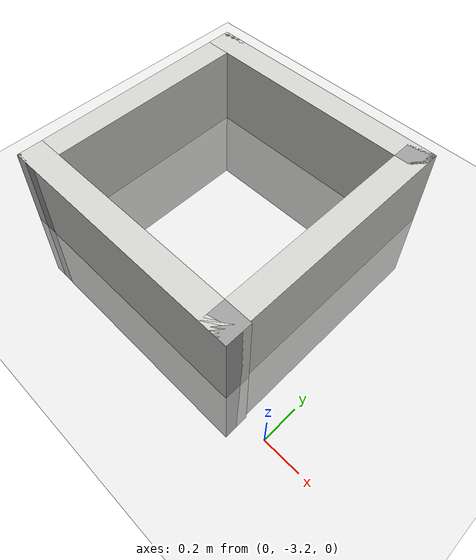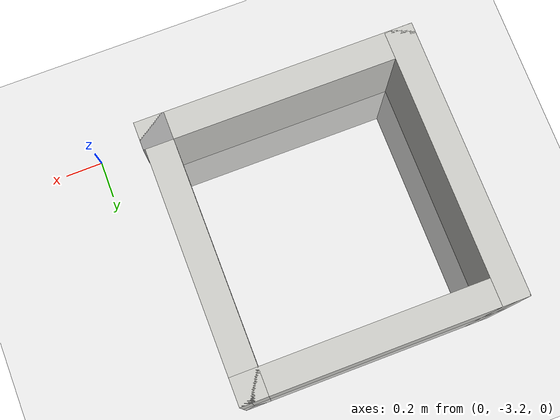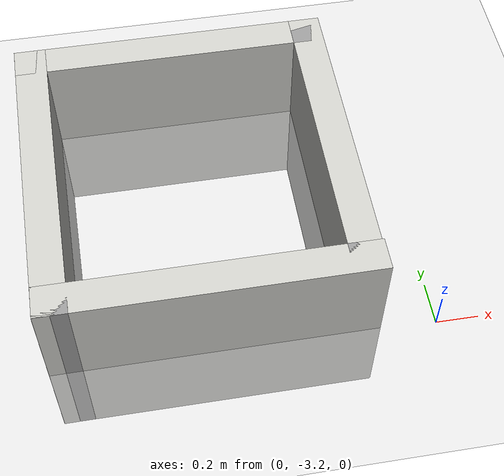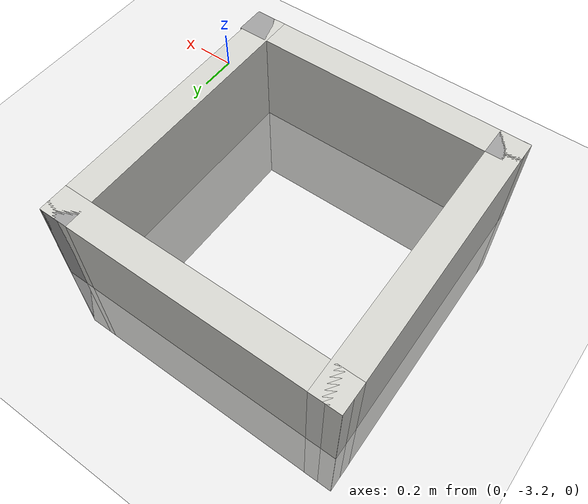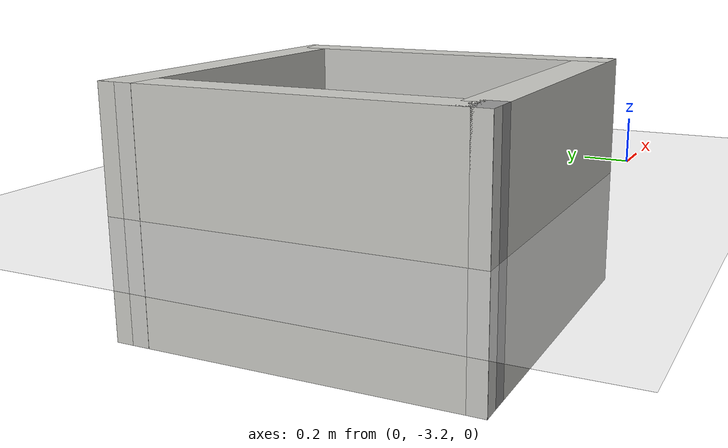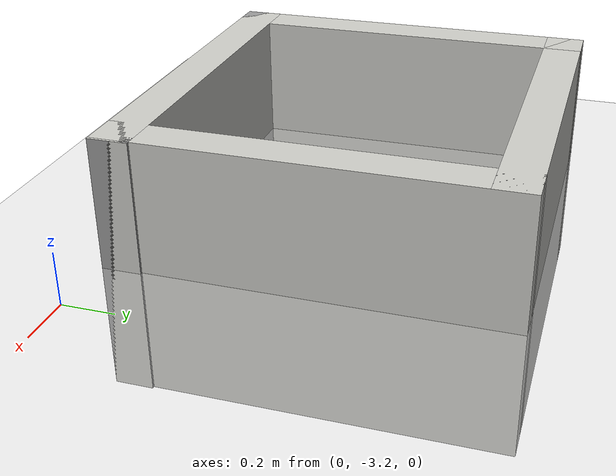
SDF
<sdf version="1.6">
 <world name="ur5_robot_base">
  <gravity>0 0 -9.81</gravity>
  <physics name="default_physics" default="0" type="ode">
   <max_step_size>0.001</max_step_size>
   <real_time_factor>1</real_time_factor>
   <real_time_update_rate>1000</real_time_update_rate>
  </physics>
  <scene><ambient>0.4 0.4 0.4 1</ambient><background>0.7 0.7 0.7 1</background><shadows>1</shadows></scene>
  <include><uri>model://sun</uri></include>
  <include><uri>model://ground_plane</uri></include>
  <model name="wall"><include><uri>model://cap_test</uri></include></model>
 </world>
</sdf>

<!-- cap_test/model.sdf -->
<sdf version='1.6'>
  <model name='cap_test'>
    <pose frame=''>-1.01028 -2.435 0 0 -0 0</pose>
    <link name='Wall_0'>
      <collision name='Wall_0_Collision'>
        <geometry>
          <box>
            <size>1.5 0.15 1</size>
          </box>
        </geometry>
        <pose frame=''>0 0 0 0 -0 0</pose>
      </collision>
      <visual name='Wall_0_Visual'>
        <pose frame=''>0 0 0 0 -0 0</pose>
        <geometry>
          <box>
            <size>1.5 0.15 1</size>
          </box>
        </geometry>
        <material>
          <script>
            <uri>file://media/materials/scripts/gazebo.material</uri>
            <name>Gazebo/CeilingTiled</name>
          </script>
          <ambient>1 1 1 1</ambient>
        </material>
        <meta>
          <layer>0</layer>
        </meta>
      </visual>
      <pose frame=''>-0.004723 0.675 0 0 -0 0</pose>
    </link>
    <link name='Wall_1'>
      <collision name='Wall_1_Collision'>
        <geometry>
          <box>
            <size>0.15 0.15 1</size>
          </box>
        </geometry>
        <pose frame=''>0 0 0 0 -0 0</pose>
      </collision>
      <visual name='Wall_1_Visual'>
        <pose frame=''>0 0 0 0 -0 0</pose>
        <geometry>
          <box>
            <size>0.15 0.15 1</size>
          </box>
        </geometry>
        <material>
          <script>
            <uri>file://media/materials/scripts/gazebo.material</uri>
            <name>Gazebo/Grey</name>
          </script>
          <ambient>1 1 1 1</ambient>
        </material>
        <meta>
          <layer>0</layer>
        </meta>
      </visual>
      <pose frame=''>0.670277 0.675 0 0 -0 0</pose>
    </link>
    <link name='Wall_2'>
      <collision name='Wall_2_Collision'>
        <geometry>
          <box>
            <size>1.5 0.15 1</size>
          </box>
        </geometry>
        <pose frame=''>0 0 0 0 -0 0</pose>
      </collision>
      <visual name='Wall_2_Visual'>
        <pose frame=''>0 0 0 0 -0 0</pose>
        <geometry>
          <box>
            <size>1.5 0.15 1</size>
          </box>
        </geometry>
        <material>
          <script>
            <uri>file://media/materials/scripts/gazebo.material</uri>
            <name>Gazebo/CeilingTiled</name>
          </script>
          <ambient>1 1 1 1</ambient>
        </material>
        <meta>
          <layer>0</layer>
        </meta>
      </visual>
      <pose frame=''>0.670277 0 0 0 -0 -1.5708</pose>
    </link>
    <link name='Wall_3'>
      <collision name='Wall_3_Collision'>
        <geometry>
          <box>
            <size>0.16 0.15 1</size>
          </box>
        </geometry>
        <pose frame=''>0 0 0 0 -0 0</pose>
      </collision>
      <visual name='Wall_3_Visual'>
        <pose frame=''>0 0 0 0 -0 0</pose>
        <geometry>
          <box>
            <size>0.16 0.15 1</size>
          </box>
        </geometry>
        <material>
          <script>
            <uri>file://media/materials/scripts/gazebo.material</uri>
            <name>Gazebo/Grey</name>
          </script>
          <ambient>1 1 1 1</ambient>
        </material>
        <meta>
          <layer>0</layer>
        </meta>
      </visual>
      <pose frame=''>0.675277 -0.675 0 0 -0 0</pose>
    </link>
    <link name='Wall_4'>
      <collision name='Wall_4_Collision'>
        <geometry>
          <box>
            <size>1.5 0.15 1</size>
          </box>
        </geometry>
        <pose frame=''>0 0 0 0 -0 0</pose>
      </collision>
      <visual name='Wall_4_Visual'>
        <pose frame=''>0 0 0 0 -0 0</pose>
        <geometry>
          <box>
            <size>1.5 0.15 1</size>
          </box>
        </geometry>
        <material>
          <script>
            <uri>file://media/materials/scripts/gazebo.material</uri>
            <name>Gazebo/CeilingTiled</name>
          </script>
          <ambient>1 1 1 1</ambient>
        </material>
        <meta>
          <layer>0</layer>
        </meta>
      </visual>
      <pose frame=''>0.005277 -0.675 0 0 -0 3.14159</pose>
    </link>
    <link name='Wall_5'>
      <collision name='Wall_5_Collision'>
        <geometry>
          <box>
            <size>0.15 0.15 1</size>
          </box>
        </geometry>
        <pose frame=''>0 0 0 0 -0 0</pose>
      </collision>
      <visual name='Wall_5_Visual'>
        <pose frame=''>0 0 0 0 -0 0</pose>
        <geometry>
          <box>
            <size>0.15 0.15 1</size>
          </box>
        </geometry>
        <material>
          <script>
            <uri>file://media/materials/scripts/gazebo.material</uri>
            <name>Gazebo/Grey</name>
          </script>
          <ambient>1 1 1 1</ambient>
        </material>
        <meta>
          <layer>0</layer>
        </meta>
      </visual>
      <pose frame=''>-0.669723 -0.675 0 0 -0 0</pose>
    </link>
    <link name='Wall_6'>
      <collision name='Wall_6_Collision'>
        <geometry>
          <box>
            <size>1.50004 0.15 1</size>
          </box>
        </geometry>
        <pose frame=''>0 0 0 0 -0 0</pose>
      </collision>
      <visual name='Wall_6_Visual'>
        <pose frame=''>0 0 0 0 -0 0</pose>
        <geometry>
          <box>
            <size>1.50004 0.15 1</size>
          </box>
        </geometry>
        <material>
          <script>
            <uri>file://media/materials/scripts/gazebo.material</uri>
            <name>Gazebo/CeilingTiled</name>
          </script>
          <ambient>1 1 1 1</ambient>
        </material>
        <meta>
          <layer>0</layer>
        </meta>
      </visual>
      <pose frame=''>-0.674723 0 0 0 -0 1.5782</pose>
    </link>
    <static>1</static>
  </model>
</sdf>
